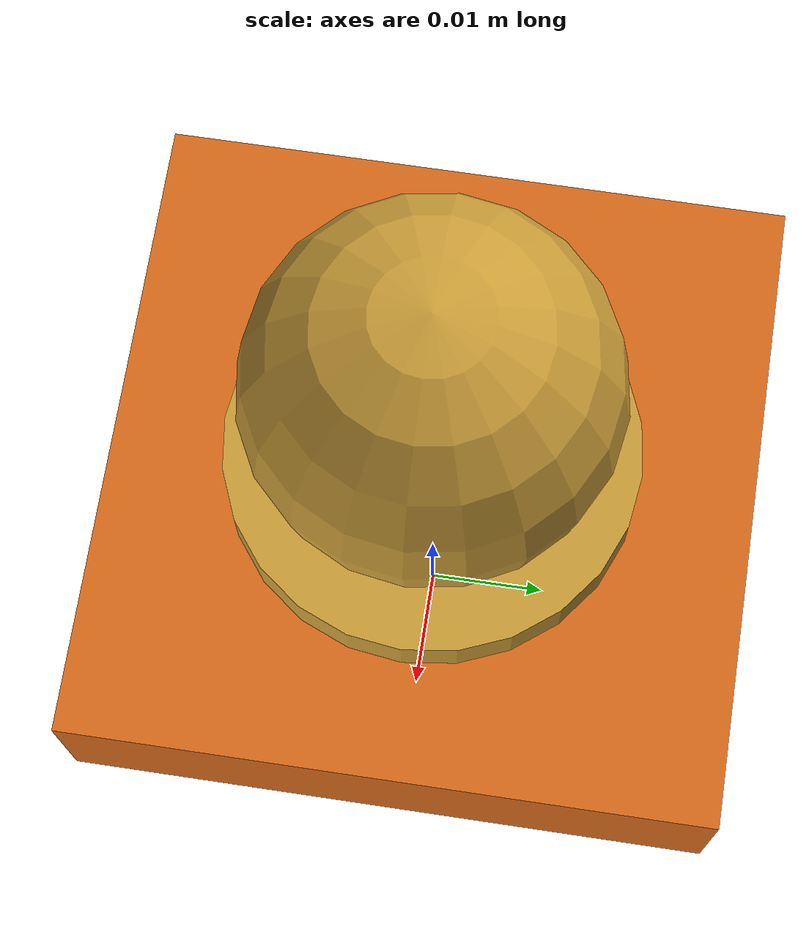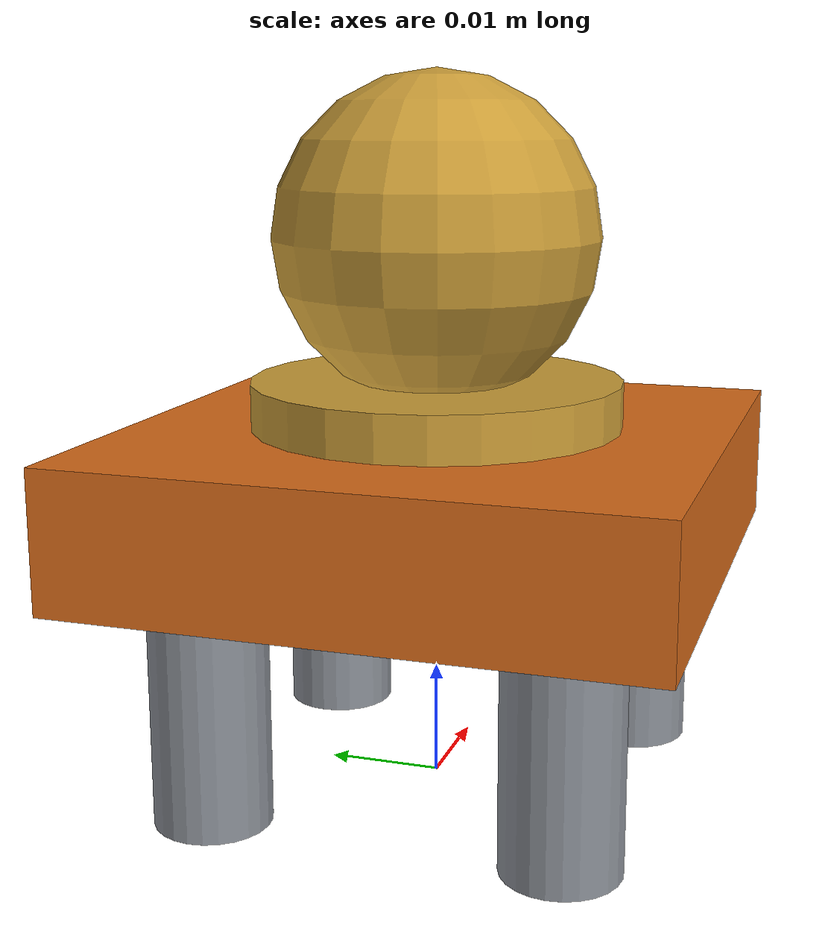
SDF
<?xml version="1.0"?>
<sdf version="1.9">
  <model name="plug">
    <!-- Ground-truth segmentation label (see segmentation_camera in
         dual_arm_workcell_gazebo.urdf.xacro). Unique per object type. -->
    <plugin filename="gz-sim-label-system" name="gz::sim::systems::Label">
      <label>1</label>
    </plugin>
    <link name="plug_link">
      <inertial>
        <pose>0 0 0.02982 0 0 0</pose>
        <mass>0.06492</mass>
        <inertia>
          <ixx>2.0305e-05</ixx>
          <iyy>2.0305e-05</iyy>
          <izz>2.0762e-05</izz>
          <ixy>0</ixy>
          <ixz>0</ixz>
          <iyz>0</iyz>
        </inertia>
      </inertial>

      <!-- Body (aluminum) -->
      <visual name="body_visual">
        <pose>0 0 0.026 0 0 0</pose>
        <geometry>
          <box><size>0.05 0.05 0.012</size></box>
        </geometry>
        <material>
          <ambient>0.85 0.42 0.10 1.0</ambient>
          <diffuse>0.85 0.42 0.10 1.0</diffuse>
          <specular>0.7 0.7 0.7 1.0</specular>
        </material>
      </visual>
      <collision name="body_collision">
        <pose>0 0 0.026 0 0 0</pose>
        <geometry>
          <box><size>0.05 0.05 0.012</size></box>
        </geometry>
        <surface>
          <friction><ode><mu>1.0</mu><mu2>1.0</mu2></ode></friction>
        </surface>
      </collision>

      <!-- 4 pins in a 2x2 pattern (steel) -->
      <visual name="pin_pp_visual">
        <pose>0.015 0.015 0.01 0 0 0</pose>
        <geometry><cylinder><radius>0.005</radius><length>0.02</length></cylinder></geometry>
        <material>
          <ambient>0.55 0.57 0.60 1.0</ambient>
          <diffuse>0.55 0.57 0.60 1.0</diffuse>
        </material>
      </visual>
      <collision name="pin_pp_collision">
        <pose>0.015 0.015 0.01 0 0 0</pose>
        <geometry><cylinder><radius>0.005</radius><length>0.02</length></cylinder></geometry>
        <surface><friction><ode><mu>1.0</mu><mu2>1.0</mu2></ode></friction></surface>
      </collision>

      <visual name="pin_pn_visual">
        <pose>0.015 -0.015 0.01 0 0 0</pose>
        <geometry><cylinder><radius>0.005</radius><length>0.02</length></cylinder></geometry>
        <material>
          <ambient>0.55 0.57 0.60 1.0</ambient>
          <diffuse>0.55 0.57 0.60 1.0</diffuse>
        </material>
      </visual>
      <collision name="pin_pn_collision">
        <pose>0.015 -0.015 0.01 0 0 0</pose>
        <geometry><cylinder><radius>0.005</radius><length>0.02</length></cylinder></geometry>
        <surface><friction><ode><mu>1.0</mu><mu2>1.0</mu2></ode></friction></surface>
      </collision>

      <visual name="pin_np_visual">
        <pose>-0.015 0.015 0.01 0 0 0</pose>
        <geometry><cylinder><radius>0.005</radius><length>0.02</length></cylinder></geometry>
        <material>
          <ambient>0.55 0.57 0.60 1.0</ambient>
          <diffuse>0.55 0.57 0.60 1.0</diffuse>
        </material>
      </visual>
      <collision name="pin_np_collision">
        <pose>-0.015 0.015 0.01 0 0 0</pose>
        <geometry><cylinder><radius>0.005</radius><length>0.02</length></cylinder></geometry>
        <surface><friction><ode><mu>1.0</mu><mu2>1.0</mu2></ode></friction></surface>
      </collision>

      <visual name="pin_nn_visual">
        <pose>-0.015 -0.015 0.01 0 0 0</pose>
        <geometry><cylinder><radius>0.005</radius><length>0.02</length></cylinder></geometry>
        <material>
          <ambient>0.55 0.57 0.60 1.0</ambient>
          <diffuse>0.55 0.57 0.60 1.0</diffuse>
        </material>
      </visual>
      <collision name="pin_nn_collision">
        <pose>-0.015 -0.015 0.01 0 0 0</pose>
        <geometry><cylinder><radius>0.005</radius><length>0.02</length></cylinder></geometry>
        <surface><friction><ode><mu>1.0</mu><mu2>1.0</mu2></ode></friction></surface>
      </collision>

      <!-- Door-knob grip: rosette + neck + round head (brass) -->
      <visual name="knob_rosette_visual">
        <pose>0 0 0.034 0 0 0</pose>
        <geometry><cylinder><radius>0.016</radius><length>0.004</length></cylinder></geometry>
        <material>
          <ambient>0.80 0.62 0.22 1.0</ambient>
          <diffuse>0.80 0.62 0.22 1.0</diffuse>
          <specular>0.9 0.8 0.5 1.0</specular>
        </material>
      </visual>
      <collision name="knob_rosette_collision">
        <pose>0 0 0.034 0 0 0</pose>
        <geometry><cylinder><radius>0.016</radius><length>0.004</length></cylinder></geometry>
        <surface><friction><ode><mu>1.0</mu><mu2>1.0</mu2></ode></friction></surface>
      </collision>

      <visual name="knob_neck_visual">
        <pose>0 0 0.042 0 0 0</pose>
        <geometry><cylinder><radius>0.006</radius><length>0.012</length></cylinder></geometry>
        <material>
          <ambient>0.80 0.62 0.22 1.0</ambient>
          <diffuse>0.80 0.62 0.22 1.0</diffuse>
          <specular>0.9 0.8 0.5 1.0</specular>
        </material>
      </visual>
      <collision name="knob_neck_collision">
        <pose>0 0 0.042 0 0 0</pose>
        <geometry><cylinder><radius>0.006</radius><length>0.012</length></cylinder></geometry>
        <surface><friction><ode><mu>1.0</mu><mu2>1.0</mu2></ode></friction></surface>
      </collision>

      <visual name="knob_head_visual">
        <pose>0 0 0.048 0 0 0</pose>
        <geometry><sphere><radius>0.014</radius></sphere></geometry>
        <material>
          <ambient>0.80 0.62 0.22 1.0</ambient>
          <diffuse>0.80 0.62 0.22 1.0</diffuse>
          <specular>0.9 0.8 0.5 1.0</specular>
        </material>
      </visual>
      <collision name="knob_head_collision">
        <pose>0 0 0.048 0 0 0</pose>
        <geometry><sphere><radius>0.014</radius></sphere></geometry>
        <surface><friction><ode><mu>1.0</mu><mu2>1.0</mu2></ode></friction></surface>
      </collision>
    </link>
  </model>
</sdf>
